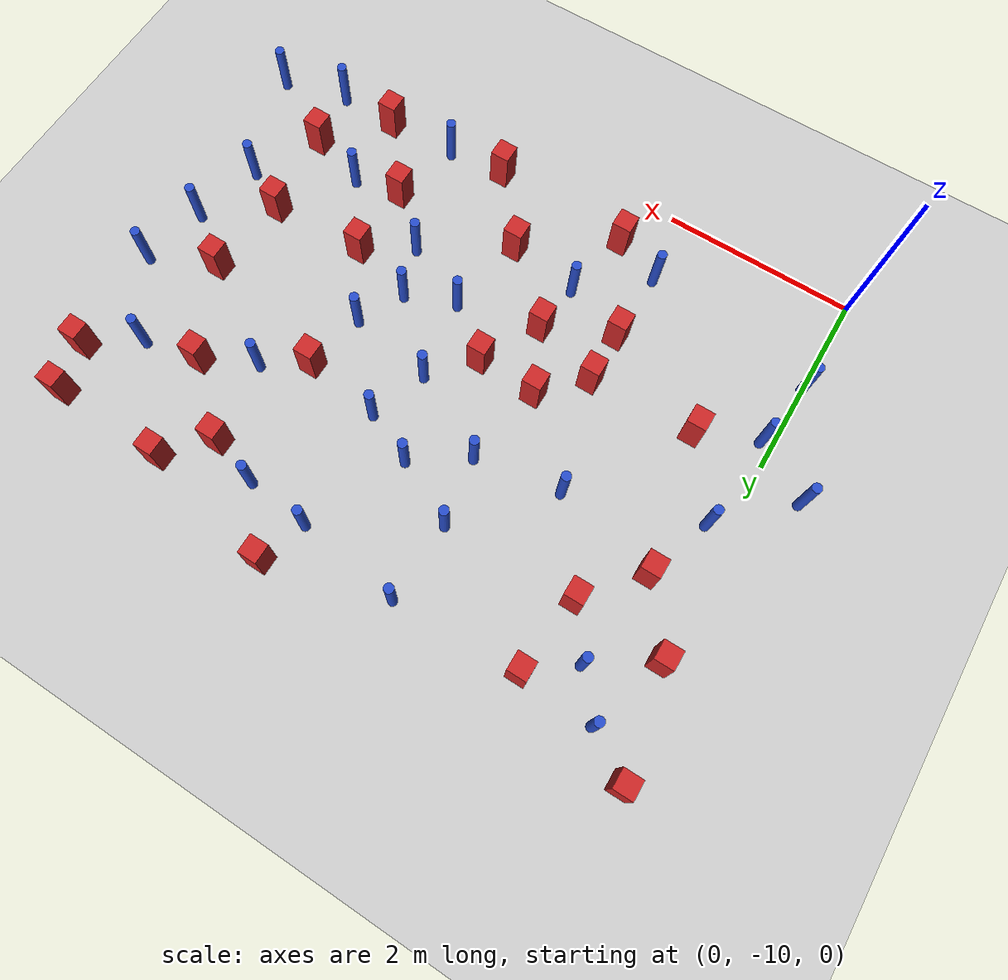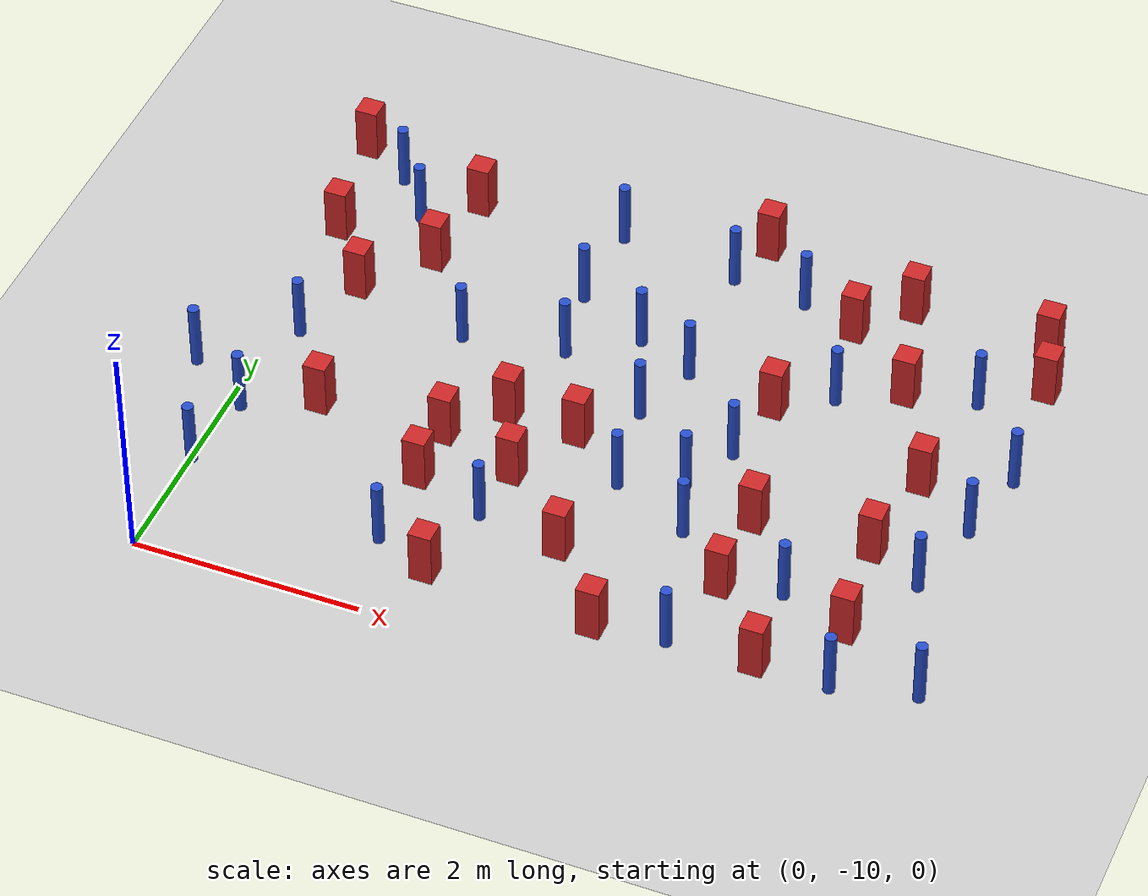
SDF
<sdf version="1.6">
 <world name="default">
  <model name="ground_plane">
   <static>1</static>
   <link name="link">
    <collision name="collision">
     <geometry><plane><normal>0 0 1</normal><size>100 100</size></plane></geometry>
     <surface><friction><ode><mu>100</mu><mu2>50</mu2></ode></friction></surface>
    </collision>
    <visual name="visual">
     <cast_shadows>0</cast_shadows>
     <geometry><plane><normal>0 0 1</normal><size>100 100</size></plane></geometry>
     <material>
      <ambient>1.0 1.0 1.0 1.0</ambient>
      <diffuse>0.8 0.8 0.8 1.0</diffuse>
      <specular>0.01 0.01 0.01 1.000000</specular>
     </material>
    </visual>
   </link>
  </model>
  <model name="square_post_obstacle1">
   <static>true</static>
   <pose>0.990745557515 -5.11221250376 -6.11067671241e-07 -5.50515727128e-06 -8.79689657224e-07 2.37013304536e-05</pose>
   <link name="link">
    <pose>0 0 0.25 0 -0 0</pose>
    <inertial>
     <mass>100</mass>
     <inertia>
      <ixx>0.166667</ixx>
      <ixy>0</ixy>
      <ixz>0</ixz>
      <iyy>0.166667</iyy>
      <iyz>0</iyz>
      <izz>0.166667</izz>
     </inertia>
    </inertial>
    <collision name="collision"><geometry><box><size>.2 .2 .5</size></box></geometry></collision>
    <visual name="visual">
     <geometry><box><size>.2 .2 .5</size></box></geometry>
     <material>
      <script><name>Gazebo/Red</name><uri>file://media/materials/scripts/gazebo.material</uri></script>
     </material>
    </visual>
   </link>
  </model>
  <model name="pole_obstacle0">
   <static>true</static>
   <pose>0.11906316881 -8.21374808849 -9.47619616065e-06 5.49618799738e-07 2.3631041403e-07 -1.55090534819e-07</pose>
   <link name="link">
    <pose>0 0 0.3 0 -0 0</pose>
    <inertial>
     <mass>1</mass>
     <inertia><ixx>0.145833</ixx><ixy>0</ixy><ixz>0</ixz><iyy>0.145833</iyy><iyz>0</iyz><izz>0.125</izz></inertia>
    </inertial>
    <collision name="collision">
     <geometry><cylinder><radius>0.05</radius><length>.6</length></cylinder></geometry>
    </collision>
    <visual name="visual">
     <geometry><cylinder><radius>0.05</radius><length>.6</length></cylinder></geometry>
     <material>
      <script><name>Gazebo/Blue</name><uri>file://media/materials/scripts/gazebo.material</uri></script>
     </material>
    </visual>
   </link>
  </model>
  <model name="pole_obstacle4">
   <static>true</static>
   <pose>5.8278807453 -5.88849563057 -9.47619616065e-06 5.49618799737e-07 2.36310414037e-07 -1.55090534814e-07</pose>
   <link name="link">
    <pose>0 0 0.3 0 -0 0</pose>
    <inertial>
     <mass>1</mass>
     <inertia><ixx>0.145833</ixx><ixy>0</ixy><ixz>0</ixz><iyy>0.145833</iyy><iyz>0</iyz><izz>0.125</izz></inertia>
    </inertial>
    <collision name="collision">
     <geometry><cylinder><radius>0.05</radius><length>.6</length></cylinder></geometry>
    </collision>
    <visual name="visual">
     <geometry><cylinder><radius>0.05</radius><length>.6</length></cylinder></geometry>
     <material>
      <script><name>Gazebo/Blue</name><uri>file://media/materials/scripts/gazebo.material</uri></script>
     </material>
    </visual>
   </link>
  </model>
  <model name="pole_obstacle7">
   <static>true</static>
   <pose>2.48516337789 -8.6628891993 -9.4761961606e-06 5.49618799729e-07 2.36310414e-07 -1.55090534824e-07</pose>
   <link name="link">
    <pose>0 0 0.3 0 -0 0</pose>
    <inertial>
     <mass>1</mass>
     <inertia><ixx>0.145833</ixx><ixy>0</ixy><ixz>0</ixz><iyy>0.145833</iyy><iyz>0</iyz><izz>0.125</izz></inertia>
    </inertial>
    <collision name="collision">
     <geometry><cylinder><radius>0.05</radius><length>.6</length></cylinder></geometry>
    </collision>
    <visual name="visual">
     <geometry><cylinder><radius>0.05</radius><length>.6</length></cylinder></geometry>
     <material>
      <script><name>Gazebo/Blue</name><uri>file://media/materials/scripts/gazebo.material</uri></script>
     </material>
    </visual>
   </link>
  </model>
  <model name="square_post_obstacle9">
   <static>true</static>
   <pose>5.16042200609 -9.40029014355 -6.11067671241e-07 -5.50515727128e-06 -8.79689657224e-07 2.37013304536e-05</pose>
   <link name="link">
    <pose>0 0 0.25 0 -0 0</pose>
    <inertial>
     <mass>100</mass>
     <inertia>
      <ixx>0.166667</ixx>
      <ixy>0</ixy>
      <ixz>0</ixz>
      <iyy>0.166667</iyy>
      <iyz>0</iyz>
      <izz>0.166667</izz>
     </inertia>
    </inertial>
    <collision name="collision"><geometry><box><size>.2 .2 .5</size></box></geometry></collision>
    <visual name="visual">
     <geometry><box><size>.2 .2 .5</size></box></geometry>
     <material>
      <script><name>Gazebo/Red</name><uri>file://media/materials/scripts/gazebo.material</uri></script>
     </material>
    </visual>
   </link>
  </model>
  <model name="square_post_obstacle15">
   <static>true</static>
   <pose>5.71017640182 -6.97548128937 -6.11067671241e-07 -5.50515727128e-06 -8.79689657224e-07 2.37013304536e-05</pose>
   <link name="link">
    <pose>0 0 0.25 0 -0 0</pose>
    <inertial>
     <mass>100</mass>
     <inertia>
      <ixx>0.166667</ixx>
      <ixy>0</ixy>
      <ixz>0</ixz>
      <iyy>0.166667</iyy>
      <iyz>0</iyz>
      <izz>0.166667</izz>
     </inertia>
    </inertial>
    <collision name="collision"><geometry><box><size>.2 .2 .5</size></box></geometry></collision>
    <visual name="visual">
     <geometry><box><size>.2 .2 .5</size></box></geometry>
     <material>
      <script><name>Gazebo/Red</name><uri>file://media/materials/scripts/gazebo.material</uri></script>
     </material>
    </visual>
   </link>
  </model>
  <model name="square_post_obstacle18">
   <static>true</static>
   <pose>2.23808886321 -7.47004831149 -6.11067671241e-07 -5.50515727128e-06 -8.79689657224e-07 2.37013304536e-05</pose>
   <link name="link">
    <pose>0 0 0.25 0 -0 0</pose>
    <inertial>
     <mass>100</mass>
     <inertia>
      <ixx>0.166667</ixx>
      <ixy>0</ixy>
      <ixz>0</ixz>
      <iyy>0.166667</iyy>
      <iyz>0</iyz>
      <izz>0.166667</izz>
     </inertia>
    </inertial>
    <collision name="collision"><geometry><box><size>.2 .2 .5</size></box></geometry></collision>
    <visual name="visual">
     <geometry><box><size>.2 .2 .5</size></box></geometry>
     <material>
      <script><name>Gazebo/Red</name><uri>file://media/materials/scripts/gazebo.material</uri></script>
     </material>
    </visual>
   </link>
  </model>
  <model name="pole_obstacle15">
   <static>true</static>
   <pose>6.4025195496 -6.66513164041 -9.47619616065e-06 5.49618799737e-07 2.36310414037e-07 -1.55090534814e-07</pose>
   <link name="link">
    <pose>0 0 0.3 0 -0 0</pose>
    <inertial>
     <mass>1</mass>
     <inertia><ixx>0.145833</ixx><ixy>0</ixy><ixz>0</ixz><iyy>0.145833</iyy><iyz>0</iyz><izz>0.125</izz></inertia>
    </inertial>
    <collision name="collision">
     <geometry><cylinder><radius>0.05</radius><length>.6</length></cylinder></geometry>
    </collision>
    <visual name="visual">
     <geometry><cylinder><radius>0.05</radius><length>.6</length></cylinder></geometry>
     <material>
      <script><name>Gazebo/Blue</name><uri>file://media/materials/scripts/gazebo.material</uri></script>
     </material>
    </visual>
   </link>
  </model>
  <model name="pole_obstacle22">
   <static>true</static>
   <pose>0.195536032455 -7.19176520849 -9.47619616065e-06 5.49618799738e-07 2.36310414064e-07 -1.55090534799e-07</pose>
   <link name="link">
    <pose>0 0 0.3 0 -0 0</pose>
    <inertial>
     <mass>1</mass>
     <inertia><ixx>0.145833</ixx><ixy>0</ixy><ixz>0</ixz><iyy>0.145833</iyy><iyz>0</iyz><izz>0.125</izz></inertia>
    </inertial>
    <collision name="collision">
     <geometry><cylinder><radius>0.05</radius><length>.6</length></cylinder></geometry>
    </collision>
    <visual name="visual">
     <geometry><cylinder><radius>0.05</radius><length>.6</length></cylinder></geometry>
     <material>
      <script><name>Gazebo/Blue</name><uri>file://media/materials/scripts/gazebo.material</uri></script>
     </material>
    </visual>
   </link>
  </model>
  <model name="pole_obstacle32">
   <static>true</static>
   <pose>6.25303647099 -7.35567265879 -9.47619616065e-06 5.49618799737e-07 2.36310414037e-07 -1.55090534814e-07</pose>
   <link name="link">
    <pose>0 0 0.3 0 -0 0</pose>
    <inertial>
     <mass>1</mass>
     <inertia><ixx>0.145833</ixx><ixy>0</ixy><ixz>0</ixz><iyy>0.145833</iyy><iyz>0</iyz><izz>0.125</izz></inertia>
    </inertial>
    <collision name="collision">
     <geometry><cylinder><radius>0.05</radius><length>.6</length></cylinder></geometry>
    </collision>
    <visual name="visual">
     <geometry><cylinder><radius>0.05</radius><length>.6</length></cylinder></geometry>
     <material>
      <script><name>Gazebo/Blue</name><uri>file://media/materials/scripts/gazebo.material</uri></script>
     </material>
    </visual>
   </link>
  </model>
  <model name="pole_obstacle40">
   <static>true</static>
   <pose>3.45626555922 -6.45096795445 -9.47619616065e-06 5.49618799738e-07 2.3631041406e-07 -1.55090534801e-07</pose>
   <link name="link">
    <pose>0 0 0.3 0 -0 0</pose>
    <inertial>
     <mass>1</mass>
     <inertia><ixx>0.145833</ixx><ixy>0</ixy><ixz>0</ixz><iyy>0.145833</iyy><iyz>0</iyz><izz>0.125</izz></inertia>
    </inertial>
    <collision name="collision">
     <geometry><cylinder><radius>0.05</radius><length>.6</length></cylinder></geometry>
    </collision>
    <visual name="visual">
     <geometry><cylinder><radius>0.05</radius><length>.6</length></cylinder></geometry>
     <material>
      <script><name>Gazebo/Blue</name><uri>file://media/materials/scripts/gazebo.material</uri></script>
     </material>
    </visual>
   </link>
  </model>
  <model name="pole_obstacle43">
   <static>true</static>
   <pose>4.05321860627 -5.26551423352 -9.47619616065e-06 5.49618799737e-07 2.36310414037e-07 -1.55090534814e-07</pose>
   <link name="link">
    <pose>0 0 0.3 0 -0 0</pose>
    <inertial>
     <mass>1</mass>
     <inertia><ixx>0.145833</ixx><ixy>0</ixy><ixz>0</ixz><iyy>0.145833</iyy><iyz>0</iyz><izz>0.125</izz></inertia>
    </inertial>
    <collision name="collision">
     <geometry><cylinder><radius>0.05</radius><length>.6</length></cylinder></geometry>
    </collision>
    <visual name="visual">
     <geometry><cylinder><radius>0.05</radius><length>.6</length></cylinder></geometry>
     <material>
      <script><name>Gazebo/Blue</name><uri>file://media/materials/scripts/gazebo.material</uri></script>
     </material>
    </visual>
   </link>
  </model>
  <model name="square_post_obstacle48">
   <static>true</static>
   <pose>5.23285957941 -6.02287781524 -6.11067671241e-07 -5.50515727128e-06 -8.79689657224e-07 2.37013304536e-05</pose>
   <link name="link">
    <pose>0 0 0.25 0 -0 0</pose>
    <inertial>
     <mass>100</mass>
     <inertia>
      <ixx>0.166667</ixx>
      <ixy>0</ixy>
      <ixz>0</ixz>
      <iyy>0.166667</iyy>
      <iyz>0</iyz>
      <izz>0.166667</izz>
     </inertia>
    </inertial>
    <collision name="collision"><geometry><box><size>.2 .2 .5</size></box></geometry></collision>
    <visual name="visual">
     <geometry><box><size>.2 .2 .5</size></box></geometry>
     <material>
      <script><name>Gazebo/Red</name><uri>file://media/materials/scripts/gazebo.material</uri></script>
     </material>
    </visual>
   </link>
  </model>
  <model name="square_post_obstacle51">
   <static>true</static>
   <pose>-0.226524741326 -4.76326145713 -6.11067671241e-07 -5.50515727128e-06 -8.79689657224e-07 2.37013304536e-05</pose>
   <link name="link">
    <pose>0 0 0.25 0 -0 0</pose>
    <inertial>
     <mass>100</mass>
     <inertia>
      <ixx>0.166667</ixx>
      <ixy>0</ixy>
      <ixz>0</ixz>
      <iyy>0.166667</iyy>
      <iyz>0</iyz>
      <izz>0.166667</izz>
     </inertia>
    </inertial>
    <collision name="collision"><geometry><box><size>.2 .2 .5</size></box></geometry></collision>
    <visual name="visual">
     <geometry><box><size>.2 .2 .5</size></box></geometry>
     <material>
      <script><name>Gazebo/Red</name><uri>file://media/materials/scripts/gazebo.material</uri></script>
     </material>
    </visual>
   </link>
  </model>
  <model name="pole_obstacle54">
   <static>true</static>
   <pose>1.5026299981 -6.74068023559 -9.47619616065e-06 5.49618799737e-07 2.36310414061e-07 -1.550905348e-07</pose>
   <link name="link">
    <pose>0 0 0.3 0 -0 0</pose>
    <inertial>
     <mass>1</mass>
     <inertia><ixx>0.145833</ixx><ixy>0</ixy><ixz>0</ixz><iyy>0.145833</iyy><iyz>0</iyz><izz>0.125</izz></inertia>
    </inertial>
    <collision name="collision">
     <geometry><cylinder><radius>0.05</radius><length>.6</length></cylinder></geometry>
    </collision>
    <visual name="visual">
     <geometry><cylinder><radius>0.05</radius><length>.6</length></cylinder></geometry>
     <material>
      <script><name>Gazebo/Blue</name><uri>file://media/materials/scripts/gazebo.material</uri></script>
     </material>
    </visual>
   </link>
  </model>
  <model name="square_post_obstacle77">
   <static>true</static>
   <pose>-0.0295060486647 -5.85834919185 -6.11067671241e-07 -5.50515727128e-06 -8.79689657224e-07 2.37013304536e-05</pose>
   <link name="link">
    <pose>0 0 0.25 0 -0 0</pose>
    <inertial>
     <mass>100</mass>
     <inertia>
      <ixx>0.166667</ixx>
      <ixy>0</ixy>
      <ixz>0</ixz>
      <iyy>0.166667</iyy>
      <iyz>0</iyz>
      <izz>0.166667</izz>
     </inertia>
    </inertial>
    <collision name="collision"><geometry><box><size>.2 .2 .5</size></box></geometry></collision>
    <visual name="visual">
     <geometry><box><size>.2 .2 .5</size></box></geometry>
     <material>
      <script><name>Gazebo/Red</name><uri>file://media/materials/scripts/gazebo.material</uri></script>
     </material>
    </visual>
   </link>
  </model>
  <model name="pole_obstacle82">
   <static>true</static>
   <pose>2.2690997647 -5.88511651672 -9.47619616065e-06 5.49618799738e-07 2.3631041406e-07 -1.55090534801e-07</pose>
   <link name="link">
    <pose>0 0 0.3 0 -0 0</pose>
    <inertial>
     <mass>1</mass>
     <inertia><ixx>0.145833</ixx><ixy>0</ixy><ixz>0</ixz><iyy>0.145833</iyy><iyz>0</iyz><izz>0.125</izz></inertia>
    </inertial>
    <collision name="collision">
     <geometry><cylinder><radius>0.05</radius><length>.6</length></cylinder></geometry>
    </collision>
    <visual name="visual">
     <geometry><cylinder><radius>0.05</radius><length>.6</length></cylinder></geometry>
     <material>
      <script><name>Gazebo/Blue</name><uri>file://media/materials/scripts/gazebo.material</uri></script>
     </material>
    </visual>
   </link>
  </model>
  <model name="pole_obstacle84">
   <static>true</static>
   <pose>3.3824913435 -5.19321054169 -9.47619616065e-06 5.49618799738e-07 2.3631041406e-07 -1.55090534801e-07</pose>
   <link name="link">
    <pose>0 0 0.3 0 -0 0</pose>
    <inertial>
     <mass>1</mass>
     <inertia><ixx>0.145833</ixx><ixy>0</ixy><ixz>0</ixz><iyy>0.145833</iyy><iyz>0</iyz><izz>0.125</izz></inertia>
    </inertial>
    <collision name="collision">
     <geometry><cylinder><radius>0.05</radius><length>.6</length></cylinder></geometry>
    </collision>
    <visual name="visual">
     <geometry><cylinder><radius>0.05</radius><length>.6</length></cylinder></geometry>
     <material>
      <script><name>Gazebo/Blue</name><uri>file://media/materials/scripts/gazebo.material</uri></script>
     </material>
    </visual>
   </link>
  </model>
  <model name="square_post_obstacle83">
   <static>true</static>
   <pose>4.2618669995 -6.57962523405 -6.11067671241e-07 -5.50515727128e-06 -8.79689657224e-07 2.37013304536e-05</pose>
   <link name="link">
    <pose>0 0 0.25 0 -0 0</pose>
    <inertial>
     <mass>100</mass>
     <inertia>
      <ixx>0.166667</ixx>
      <ixy>0</ixy>
      <ixz>0</ixz>
      <iyy>0.166667</iyy>
      <iyz>0</iyz>
      <izz>0.166667</izz>
     </inertia>
    </inertial>
    <collision name="collision"><geometry><box><size>.2 .2 .5</size></box></geometry></collision>
    <visual name="visual">
     <geometry><box><size>.2 .2 .5</size></box></geometry>
     <material>
      <script><name>Gazebo/Red</name><uri>file://media/materials/scripts/gazebo.material</uri></script>
     </material>
    </visual>
   </link>
  </model>
  <model name="square_post_obstacle87">
   <static>true</static>
   <pose>3.53726460842 -4.71168558514 -6.11067671241e-07 -5.50515727128e-06 -8.79689657224e-07 2.37013304536e-05</pose>
   <link name="link">
    <pose>0 0 0.25 0 -0 0</pose>
    <inertial>
     <mass>100</mass>
     <inertia>
      <ixx>0.166667</ixx>
      <ixy>0</ixy>
      <ixz>0</ixz>
      <iyy>0.166667</iyy>
      <iyz>0</iyz>
      <izz>0.166667</izz>
     </inertia>
    </inertial>
    <collision name="collision"><geometry><box><size>.2 .2 .5</size></box></geometry></collision>
    <visual name="visual">
     <geometry><box><size>.2 .2 .5</size></box></geometry>
     <material>
      <script><name>Gazebo/Red</name><uri>file://media/materials/scripts/gazebo.material</uri></script>
     </material>
    </visual>
   </link>
  </model>
  <model name="pole_obstacle97">
   <static>true</static>
   <pose>3.91187994559 -7.7016430965 -9.47619616065e-06 5.49618799738e-07 2.3631041406e-07 -1.55090534801e-07</pose>
   <link name="link">
    <pose>0 0 0.3 0 -0 0</pose>
    <inertial>
     <mass>1</mass>
     <inertia><ixx>0.145833</ixx><ixy>0</ixy><ixz>0</ixz><iyy>0.145833</iyy><iyz>0</iyz><izz>0.125</izz></inertia>
    </inertial>
    <collision name="collision">
     <geometry><cylinder><radius>0.05</radius><length>.6</length></cylinder></geometry>
    </collision>
    <visual name="visual">
     <geometry><cylinder><radius>0.05</radius><length>.6</length></cylinder></geometry>
     <material>
      <script><name>Gazebo/Blue</name><uri>file://media/materials/scripts/gazebo.material</uri></script>
     </material>
    </visual>
   </link>
  </model>
  <model name="square_post_obstacle88">
   <static>true</static>
   <pose>1.8486278164 -8.4469480732 -6.11067671241e-07 -5.50515727128e-06 -8.79689657224e-07 2.37013304536e-05</pose>
   <link name="link">
    <pose>0 0 0.25 0 -0 0</pose>
    <inertial>
     <mass>100</mass>
     <inertia>
      <ixx>0.166667</ixx>
      <ixy>0</ixy>
      <ixz>0</ixz>
      <iyy>0.166667</iyy>
      <iyz>0</iyz>
      <izz>0.166667</izz>
     </inertia>
    </inertial>
    <collision name="collision"><geometry><box><size>.2 .2 .5</size></box></geometry></collision>
    <visual name="visual">
     <geometry><box><size>.2 .2 .5</size></box></geometry>
     <material>
      <script><name>Gazebo/Red</name><uri>file://media/materials/scripts/gazebo.material</uri></script>
     </material>
    </visual>
   </link>
  </model>
  <model name="pole_obstacle102">
   <static>true</static>
   <pose>4.42021800701 -9.42635367814 -9.47619616065e-06 5.49618799737e-07 2.36310414065e-07 -1.55090534796e-07</pose>
   <link name="link">
    <pose>0 0 0.3 0 -0 0</pose>
    <inertial>
     <mass>1</mass>
     <inertia><ixx>0.145833</ixx><ixy>0</ixy><ixz>0</ixz><iyy>0.145833</iyy><iyz>0</iyz><izz>0.125</izz></inertia>
    </inertial>
    <collision name="collision">
     <geometry><cylinder><radius>0.05</radius><length>.6</length></cylinder></geometry>
    </collision>
    <visual name="visual">
     <geometry><cylinder><radius>0.05</radius><length>.6</length></cylinder></geometry>
     <material>
      <script><name>Gazebo/Blue</name><uri>file://media/materials/scripts/gazebo.material</uri></script>
     </material>
    </visual>
   </link>
  </model>
  <model name="square_post_obstacle94">
   <static>true</static>
   <pose>5.70252122487 -8.79450902894 -6.11067671241e-07 -5.50515727128e-06 -8.79689657224e-07 2.37013304536e-05</pose>
   <link name="link">
    <pose>0 0 0.25 0 -0 0</pose>
    <inertial>
     <mass>100</mass>
     <inertia>
      <ixx>0.166667</ixx>
      <ixy>0</ixy>
      <ixz>0</ixz>
      <iyy>0.166667</iyy>
      <iyz>0</iyz>
      <izz>0.166667</izz>
     </inertia>
    </inertial>
    <collision name="collision"><geometry><box><size>.2 .2 .5</size></box></geometry></collision>
    <visual name="visual">
     <geometry><box><size>.2 .2 .5</size></box></geometry>
     <material>
      <script><name>Gazebo/Red</name><uri>file://media/materials/scripts/gazebo.material</uri></script>
     </material>
    </visual>
   </link>
  </model>
  <model name="square_post_obstacle95">
   <static>true</static>
   <pose>4.95866702561 -5.00988702206 -6.11067671241e-07 -5.50515727128e-06 -8.79689657224e-07 2.37013304536e-05</pose>
   <link name="link">
    <pose>0 0 0.25 0 -0 0</pose>
    <inertial>
     <mass>100</mass>
     <inertia>
      <ixx>0.166667</ixx>
      <ixy>0</ixy>
      <ixz>0</ixz>
      <iyy>0.166667</iyy>
      <iyz>0</iyz>
      <izz>0.166667</izz>
     </inertia>
    </inertial>
    <collision name="collision"><geometry><box><size>.2 .2 .5</size></box></geometry></collision>
    <visual name="visual">
     <geometry><box><size>.2 .2 .5</size></box></geometry>
     <material>
      <script><name>Gazebo/Red</name><uri>file://media/materials/scripts/gazebo.material</uri></script>
     </material>
    </visual>
   </link>
  </model>
  <model name="pole_obstacle115">
   <static>true</static>
   <pose>6.07173475081 -8.09204075943 -9.47619616065e-06 5.49618799737e-07 2.36310414065e-07 -1.55090534796e-07</pose>
   <link name="link">
    <pose>0 0 0.3 0 -0 0</pose>
    <inertial>
     <mass>1</mass>
     <inertia><ixx>0.145833</ixx><ixy>0</ixy><ixz>0</ixz><iyy>0.145833</iyy><iyz>0</iyz><izz>0.125</izz></inertia>
    </inertial>
    <collision name="collision">
     <geometry><cylinder><radius>0.05</radius><length>.6</length></cylinder></geometry>
    </collision>
    <visual name="visual">
     <geometry><cylinder><radius>0.05</radius><length>.6</length></cylinder></geometry>
     <material>
      <script><name>Gazebo/Blue</name><uri>file://media/materials/scripts/gazebo.material</uri></script>
     </material>
    </visual>
   </link>
  </model>
  <model name="square_post_obstacle110">
   <static>true</static>
   <pose>2.87223565103 -7.50167372046 -6.11067671241e-07 -5.50515727128e-06 -8.79689657224e-07 2.37013304536e-05</pose>
   <link name="link">
    <pose>0 0 0.25 0 -0 0</pose>
    <inertial>
     <mass>100</mass>
     <inertia>
      <ixx>0.166667</ixx>
      <ixy>0</ixy>
      <ixz>0</ixz>
      <iyy>0.166667</iyy>
      <iyz>0</iyz>
      <izz>0.166667</izz>
     </inertia>
    </inertial>
    <collision name="collision"><geometry><box><size>.2 .2 .5</size></box></geometry></collision>
    <visual name="visual">
     <geometry><box><size>.2 .2 .5</size></box></geometry>
     <material>
      <script><name>Gazebo/Red</name><uri>file://media/materials/scripts/gazebo.material</uri></script>
     </material>
    </visual>
   </link>
  </model>
  <model name="pole_obstacle121">
   <static>true</static>
   <pose>2.30269021293 -5.04449209234 -9.47619616065e-06 5.49618799738e-07 2.3631041406e-07 -1.55090534801e-07</pose>
   <link name="link">
    <pose>0 0 0.3 0 -0 0</pose>
    <inertial>
     <mass>1</mass>
     <inertia><ixx>0.145833</ixx><ixy>0</ixy><ixz>0</ixz><iyy>0.145833</iyy><iyz>0</iyz><izz>0.125</izz></inertia>
    </inertial>
    <collision name="collision">
     <geometry><cylinder><radius>0.05</radius><length>.6</length></cylinder></geometry>
    </collision>
    <visual name="visual">
     <geometry><cylinder><radius>0.05</radius><length>.6</length></cylinder></geometry>
     <material>
      <script><name>Gazebo/Blue</name><uri>file://media/materials/scripts/gazebo.material</uri></script>
     </material>
    </visual>
   </link>
  </model>
  <model name="pole_obstacle122">
   <static>true</static>
   <pose>3.25203608269 -7.05485281898 -9.47619616065e-06 5.49618799738e-07 2.3631041406e-07 -1.55090534801e-07</pose>
   <link name="link">
    <pose>0 0 0.3 0 -0 0</pose>
    <inertial>
     <mass>1</mass>
     <inertia><ixx>0.145833</ixx><ixy>0</ixy><ixz>0</ixz><iyy>0.145833</iyy><iyz>0</iyz><izz>0.125</izz></inertia>
    </inertial>
    <collision name="collision">
     <geometry><cylinder><radius>0.05</radius><length>.6</length></cylinder></geometry>
    </collision>
    <visual name="visual">
     <geometry><cylinder><radius>0.05</radius><length>.6</length></cylinder></geometry>
     <material>
      <script><name>Gazebo/Blue</name><uri>file://media/materials/scripts/gazebo.material</uri></script>
     </material>
    </visual>
   </link>
  </model>
  <model name="pole_obstacle137">
   <static>true</static>
   <pose>4.14444664745 -7.2181362221 -9.47619616065e-06 5.49618799737e-07 2.36310414037e-07 -1.55090534814e-07</pose>
   <link name="link">
    <pose>0 0 0.3 0 -0 0</pose>
    <inertial>
     <mass>1</mass>
     <inertia><ixx>0.145833</ixx><ixy>0</ixy><ixz>0</ixz><iyy>0.145833</iyy><iyz>0</iyz><izz>0.125</izz></inertia>
    </inertial>
    <collision name="collision">
     <geometry><cylinder><radius>0.05</radius><length>.6</length></cylinder></geometry>
    </collision>
    <visual name="visual">
     <geometry><cylinder><radius>0.05</radius><length>.6</length></cylinder></geometry>
     <material>
      <script><name>Gazebo/Blue</name><uri>file://media/materials/scripts/gazebo.material</uri></script>
     </material>
    </visual>
   </link>
  </model>
  <model name="square_post_obstacle120">
   <static>true</static>
   <pose>4.59781854516 -8.6929814129 -6.11067671241e-07 -5.50515727128e-06 -8.79689657224e-07 2.37013304536e-05</pose>
   <link name="link">
    <pose>0 0 0.25 0 -0 0</pose>
    <inertial>
     <mass>100</mass>
     <inertia>
      <ixx>0.166667</ixx>
      <ixy>0</ixy>
      <ixz>0</ixz>
      <iyy>0.166667</iyy>
      <iyz>0</iyz>
      <izz>0.166667</izz>
     </inertia>
    </inertial>
    <collision name="collision"><geometry><box><size>.2 .2 .5</size></box></geometry></collision>
    <visual name="visual">
     <geometry><box><size>.2 .2 .5</size></box></geometry>
     <material>
      <script><name>Gazebo/Red</name><uri>file://media/materials/scripts/gazebo.material</uri></script>
     </material>
    </visual>
   </link>
  </model>
  <model name="square_post_obstacle123">
   <static>true</static>
   <pose>4.56554223984 -5.43580724595 -6.11067671241e-07 -5.50515727128e-06 -8.79689657224e-07 2.37013304536e-05</pose>
   <link name="link">
    <pose>0 0 0.25 0 -0 0</pose>
    <inertial>
     <mass>100</mass>
     <inertia>
      <ixx>0.166667</ixx>
      <ixy>0</ixy>
      <ixz>0</ixz>
      <iyy>0.166667</iyy>
      <iyz>0</iyz>
      <izz>0.166667</izz>
     </inertia>
    </inertial>
    <collision name="collision"><geometry><box><size>.2 .2 .5</size></box></geometry></collision>
    <visual name="visual">
     <geometry><box><size>.2 .2 .5</size></box></geometry>
     <material>
      <script><name>Gazebo/Red</name><uri>file://media/materials/scripts/gazebo.material</uri></script>
     </material>
    </visual>
   </link>
  </model>
  <model name="square_post_obstacle128">
   <static>true</static>
   <pose>2.33505238018 -9.42761902415 -6.11067671241e-07 -5.50515727128e-06 -8.79689657224e-07 2.37013304536e-05</pose>
   <link name="link">
    <pose>0 0 0.25 0 -0 0</pose>
    <inertial>
     <mass>100</mass>
     <inertia>
      <ixx>0.166667</ixx>
      <ixy>0</ixy>
      <ixz>0</ixz>
      <iyy>0.166667</iyy>
      <iyz>0</iyz>
      <izz>0.166667</izz>
     </inertia>
    </inertial>
    <collision name="collision"><geometry><box><size>.2 .2 .5</size></box></geometry></collision>
    <visual name="visual">
     <geometry><box><size>.2 .2 .5</size></box></geometry>
     <material>
      <script><name>Gazebo/Red</name><uri>file://media/materials/scripts/gazebo.material</uri></script>
     </material>
    </visual>
   </link>
  </model>
  <model name="square_post_obstacle131">
   <static>true</static>
   <pose>4.5854856726 -7.90444692328 -6.11067671241e-07 -5.50515727128e-06 -8.79689657224e-07 2.37013304536e-05</pose>
   <link name="link">
    <pose>0 0 0.25 0 -0 0</pose>
    <inertial>
     <mass>100</mass>
     <inertia>
      <ixx>0.166667</ixx>
      <ixy>0</ixy>
      <ixz>0</ixz>
      <iyy>0.166667</iyy>
      <iyz>0</iyz>
      <izz>0.166667</izz>
     </inertia>
    </inertial>
    <collision name="collision"><geometry><box><size>.2 .2 .5</size></box></geometry></collision>
    <visual name="visual">
     <geometry><box><size>.2 .2 .5</size></box></geometry>
     <material>
      <script><name>Gazebo/Red</name><uri>file://media/materials/scripts/gazebo.material</uri></script>
     </material>
    </visual>
   </link>
  </model>
  <model name="pole_obstacle148">
   <static>true</static>
   <pose>1.83119544911 -9.21611574282 -9.47619616065e-06 5.49618799737e-07 2.36310414046e-07 -1.55090534809e-07</pose>
   <link name="link">
    <pose>0 0 0.3 0 -0 0</pose>
    <inertial>
     <mass>1</mass>
     <inertia><ixx>0.145833</ixx><ixy>0</ixy><ixz>0</ixz><iyy>0.145833</iyy><iyz>0</iyz><izz>0.125</izz></inertia>
    </inertial>
    <collision name="collision">
     <geometry><cylinder><radius>0.05</radius><length>.6</length></cylinder></geometry>
    </collision>
    <visual name="visual">
     <geometry><cylinder><radius>0.05</radius><length>.6</length></cylinder></geometry>
     <material>
      <script><name>Gazebo/Blue</name><uri>file://media/materials/scripts/gazebo.material</uri></script>
     </material>
    </visual>
   </link>
  </model>
  <model name="square_post_obstacle140">
   <static>true</static>
   <pose>0.725982753769 -7.93812512078 -6.11067671241e-07 -5.50515727128e-06 -8.79689657224e-07 2.37013304536e-05</pose>
   <link name="link">
    <pose>0 0 0.25 0 -0 0</pose>
    <inertial>
     <mass>100</mass>
     <inertia>
      <ixx>0.166667</ixx>
      <ixy>0</ixy>
      <ixz>0</ixz>
      <iyy>0.166667</iyy>
      <iyz>0</iyz>
      <izz>0.166667</izz>
     </inertia>
    </inertial>
    <collision name="collision"><geometry><box><size>.2 .2 .5</size></box></geometry></collision>
    <visual name="visual">
     <geometry><box><size>.2 .2 .5</size></box></geometry>
     <material>
      <script><name>Gazebo/Red</name><uri>file://media/materials/scripts/gazebo.material</uri></script>
     </material>
    </visual>
   </link>
  </model>
  <model name="pole_obstacle149">
   <static>true</static>
   <pose>0.555630916487 -5.45600510376 -9.47619616065e-06 5.49618799737e-07 2.36310414065e-07 -1.55090534796e-07</pose>
   <link name="link">
    <pose>0 0 0.3 0 -0 0</pose>
    <inertial>
     <mass>1</mass>
     <inertia><ixx>0.145833</ixx><ixy>0</ixy><ixz>0</ixz><iyy>0.145833</iyy><iyz>0</iyz><izz>0.125</izz></inertia>
    </inertial>
    <collision name="collision">
     <geometry><cylinder><radius>0.05</radius><length>.6</length></cylinder></geometry>
    </collision>
    <visual name="visual">
     <geometry><cylinder><radius>0.05</radius><length>.6</length></cylinder></geometry>
     <material>
      <script><name>Gazebo/Blue</name><uri>file://media/materials/scripts/gazebo.material</uri></script>
     </material>
    </visual>
   </link>
  </model>
  <model name="pole_obstacle150">
   <static>true</static>
   <pose>0.0104127863351 -8.93412859887 -9.47619616065e-06 5.49618799737e-07 2.36310414036e-07 -1.55090534815e-07</pose>
   <link name="link">
    <pose>0 0 0.3 0 -0 0</pose>
    <inertial>
     <mass>1</mass>
     <inertia><ixx>0.145833</ixx><ixy>0</ixy><ixz>0</ixz><iyy>0.145833</iyy><iyz>0</iyz><izz>0.125</izz></inertia>
    </inertial>
    <collision name="collision">
     <geometry><cylinder><radius>0.05</radius><length>.6</length></cylinder></geometry>
    </collision>
    <visual name="visual">
     <geometry><cylinder><radius>0.05</radius><length>.6</length></cylinder></geometry>
     <material>
      <script><name>Gazebo/Blue</name><uri>file://media/materials/scripts/gazebo.material</uri></script>
     </material>
    </visual>
   </link>
  </model>
  <model name="pole_obstacle151">
   <static>true</static>
   <pose>3.38958055804 -7.90406429127 -9.47619616065e-06 5.49618799738e-07 2.3631041406e-07 -1.55090534801e-07</pose>
   <link name="link">
    <pose>0 0 0.3 0 -0 0</pose>
    <inertial>
     <mass>1</mass>
     <inertia><ixx>0.145833</ixx><ixy>0</ixy><ixz>0</ixz><iyy>0.145833</iyy><iyz>0</iyz><izz>0.125</izz></inertia>
    </inertial>
    <collision name="collision">
     <geometry><cylinder><radius>0.05</radius><length>.6</length></cylinder></geometry>
    </collision>
    <visual name="visual">
     <geometry><cylinder><radius>0.05</radius><length>.6</length></cylinder></geometry>
     <material>
      <script><name>Gazebo/Blue</name><uri>file://media/materials/scripts/gazebo.material</uri></script>
     </material>
    </visual>
   </link>
  </model>
  <model name="square_post_obstacle142">
   <static>true</static>
   <pose>0.439153952977 -6.49532499697 -6.11067671241e-07 -5.50515727128e-06 -8.79689657224e-07 2.37013304536e-05</pose>
   <link name="link">
    <pose>0 0 0.25 0 -0 0</pose>
    <inertial>
     <mass>100</mass>
     <inertia>
      <ixx>0.166667</ixx>
      <ixy>0</ixy>
      <ixz>0</ixz>
      <iyy>0.166667</iyy>
      <iyz>0</iyz>
      <izz>0.166667</izz>
     </inertia>
    </inertial>
    <collision name="collision"><geometry><box><size>.2 .2 .5</size></box></geometry></collision>
    <visual name="visual">
     <geometry><box><size>.2 .2 .5</size></box></geometry>
     <material>
      <script><name>Gazebo/Red</name><uri>file://media/materials/scripts/gazebo.material</uri></script>
     </material>
    </visual>
   </link>
  </model>
  <model name="square_post_obstacle146">
   <static>true</static>
   <pose>3.23049753577 -8.7818373194 -6.11067671241e-07 -5.50515727128e-06 -8.79689657224e-07 2.37013304536e-05</pose>
   <link name="link">
    <pose>0 0 0.25 0 -0 0</pose>
    <inertial>
     <mass>100</mass>
     <inertia>
      <ixx>0.166667</ixx>
      <ixy>0</ixy>
      <ixz>0</ixz>
      <iyy>0.166667</iyy>
      <iyz>0</iyz>
      <izz>0.166667</izz>
     </inertia>
    </inertial>
    <collision name="collision"><geometry><box><size>.2 .2 .5</size></box></geometry></collision>
    <visual name="visual">
     <geometry><box><size>.2 .2 .5</size></box></geometry>
     <material>
      <script><name>Gazebo/Red</name><uri>file://media/materials/scripts/gazebo.material</uri></script>
     </material>
    </visual>
   </link>
  </model>
  <model name="pole_obstacle157">
   <static>true</static>
   <pose>4.09553622197 -8.22539561161 -9.47619616065e-06 5.49618799737e-07 2.36310414065e-07 -1.55090534796e-07</pose>
   <link name="link">
    <pose>0 0 0.3 0 -0 0</pose>
    <inertial>
     <mass>1</mass>
     <inertia><ixx>0.145833</ixx><ixy>0</ixy><ixz>0</ixz><iyy>0.145833</iyy><iyz>0</iyz><izz>0.125</izz></inertia>
    </inertial>
    <collision name="collision">
     <geometry><cylinder><radius>0.05</radius><length>.6</length></cylinder></geometry>
    </collision>
    <visual name="visual">
     <geometry><cylinder><radius>0.05</radius><length>.6</length></cylinder></geometry>
     <material>
      <script><name>Gazebo/Blue</name><uri>file://media/materials/scripts/gazebo.material</uri></script>
     </material>
    </visual>
   </link>
  </model>
  <model name="pole_obstacle159">
   <static>true</static>
   <pose>4.70533378218 -6.28805375748 -9.47619616065e-06 5.49618799737e-07 2.36310414037e-07 -1.55090534814e-07</pose>
   <link name="link">
    <pose>0 0 0.3 0 -0 0</pose>
    <inertial>
     <mass>1</mass>
     <inertia><ixx>0.145833</ixx><ixy>0</ixy><ixz>0</ixz><iyy>0.145833</iyy><iyz>0</iyz><izz>0.125</izz></inertia>
    </inertial>
    <collision name="collision">
     <geometry><cylinder><radius>0.05</radius><length>.6</length></cylinder></geometry>
    </collision>
    <visual name="visual">
     <geometry><cylinder><radius>0.05</radius><length>.6</length></cylinder></geometry>
     <material>
      <script><name>Gazebo/Blue</name><uri>file://media/materials/scripts/gazebo.material</uri></script>
     </material>
    </visual>
   </link>
  </model>
  <model name="square_post_obstacle155">
   <static>true</static>
   <pose>6.31469567299 -5.54233099596 -6.11067671241e-07 -5.50515727128e-06 -8.79689657224e-07 2.37013304536e-05</pose>
   <link name="link">
    <pose>0 0 0.25 0 -0 0</pose>
    <inertial>
     <mass>100</mass>
     <inertia>
      <ixx>0.166667</ixx>
      <ixy>0</ixy>
      <ixz>0</ixz>
      <iyy>0.166667</iyy>
      <iyz>0</iyz>
      <izz>0.166667</izz>
     </inertia>
    </inertial>
    <collision name="collision"><geometry><box><size>.2 .2 .5</size></box></geometry></collision>
    <visual name="visual">
     <geometry><box><size>.2 .2 .5</size></box></geometry>
     <material>
      <script><name>Gazebo/Red</name><uri>file://media/materials/scripts/gazebo.material</uri></script>
     </material>
    </visual>
   </link>
  </model>
  <model name="pole_obstacle171">
   <static>true</static>
   <pose>2.38626031242 -6.59296722177 -9.47619616065e-06 5.49618799738e-07 2.3631041406e-07 -1.55090534801e-07</pose>
   <link name="link">
    <pose>0 0 0.3 0 -0 0</pose>
    <inertial>
     <mass>1</mass>
     <inertia><ixx>0.145833</ixx><ixy>0</ixy><ixz>0</ixz><iyy>0.145833</iyy><iyz>0</iyz><izz>0.125</izz></inertia>
    </inertial>
    <collision name="collision">
     <geometry><cylinder><radius>0.05</radius><length>.6</length></cylinder></geometry>
    </collision>
    <visual name="visual">
     <geometry><cylinder><radius>0.05</radius><length>.6</length></cylinder></geometry>
     <material>
      <script><name>Gazebo/Blue</name><uri>file://media/materials/scripts/gazebo.material</uri></script>
     </material>
    </visual>
   </link>
  </model>
  <model name="pole_obstacle176">
   <static>true</static>
   <pose>5.79416698098 -9.41440557211 -9.47619616065e-06 5.49618799737e-07 2.36310414065e-07 -1.55090534796e-07</pose>
   <link name="link">
    <pose>0 0 0.3 0 -0 0</pose>
    <inertial>
     <mass>1</mass>
     <inertia><ixx>0.145833</ixx><ixy>0</ixy><ixz>0</ixz><iyy>0.145833</iyy><iyz>0</iyz><izz>0.125</izz></inertia>
    </inertial>
    <collision name="collision">
     <geometry><cylinder><radius>0.05</radius><length>.6</length></cylinder></geometry>
    </collision>
    <visual name="visual">
     <geometry><cylinder><radius>0.05</radius><length>.6</length></cylinder></geometry>
     <material>
      <script><name>Gazebo/Blue</name><uri>file://media/materials/scripts/gazebo.material</uri></script>
     </material>
    </visual>
   </link>
  </model>
  <model name="pole_obstacle178">
   <static>true</static>
   <pose>6.48480801184 -9.24136238838 -9.47619616065e-06 5.49618799737e-07 2.36310414065e-07 -1.55090534796e-07</pose>
   <link name="link">
    <pose>0 0 0.3 0 -0 0</pose>
    <inertial>
     <mass>1</mass>
     <inertia><ixx>0.145833</ixx><ixy>0</ixy><ixz>0</ixz><iyy>0.145833</iyy><iyz>0</iyz><izz>0.125</izz></inertia>
    </inertial>
    <collision name="collision">
     <geometry><cylinder><radius>0.05</radius><length>.6</length></cylinder></geometry>
    </collision>
    <visual name="visual">
     <geometry><cylinder><radius>0.05</radius><length>.6</length></cylinder></geometry>
     <material>
      <script><name>Gazebo/Blue</name><uri>file://media/materials/scripts/gazebo.material</uri></script>
     </material>
    </visual>
   </link>
  </model>
  <model name="pole_obstacle181">
   <static>true</static>
   <pose>2.92980646061 -6.21720251149 -9.47619616065e-06 5.49618799738e-07 2.3631041406e-07 -1.55090534801e-07</pose>
   <link name="link">
    <pose>0 0 0.3 0 -0 0</pose>
    <inertial>
     <mass>1</mass>
     <inertia><ixx>0.145833</ixx><ixy>0</ixy><ixz>0</ixz><iyy>0.145833</iyy><iyz>0</iyz><izz>0.125</izz></inertia>
    </inertial>
    <collision name="collision">
     <geometry><cylinder><radius>0.05</radius><length>.6</length></cylinder></geometry>
    </collision>
    <visual name="visual">
     <geometry><cylinder><radius>0.05</radius><length>.6</length></cylinder></geometry>
     <material>
      <script><name>Gazebo/Blue</name><uri>file://media/materials/scripts/gazebo.material</uri></script>
     </material>
    </visual>
   </link>
  </model>
  <model name="square_post_obstacle174">
   <static>true</static>
   <pose>5.59743534386 -7.85800029079 -6.11067671241e-07 -5.50515727128e-06 -8.79689657224e-07 2.37013304536e-05</pose>
   <link name="link">
    <pose>0 0 0.25 0 -0 0</pose>
    <inertial>
     <mass>100</mass>
     <inertia>
      <ixx>0.166667</ixx>
      <ixy>0</ixy>
      <ixz>0</ixz>
      <iyy>0.166667</iyy>
      <iyz>0</iyz>
      <izz>0.166667</izz>
     </inertia>
    </inertial>
    <collision name="collision"><geometry><box><size>.2 .2 .5</size></box></geometry></collision>
    <visual name="visual">
     <geometry><box><size>.2 .2 .5</size></box></geometry>
     <material>
      <script><name>Gazebo/Red</name><uri>file://media/materials/scripts/gazebo.material</uri></script>
     </material>
    </visual>
   </link>
  </model>
  <model name="square_post_obstacle177">
   <static>true</static>
   <pose>3.8128430047 -9.49681700598 -6.11067671241e-07 -5.50515727128e-06 -8.79689657224e-07 2.37013304536e-05</pose>
   <link name="link">
    <pose>0 0 0.25 0 -0 0</pose>
    <inertial>
     <mass>100</mass>
     <inertia>
      <ixx>0.166667</ixx>
      <ixy>0</ixy>
      <ixz>0</ixz>
      <iyy>0.166667</iyy>
      <iyz>0</iyz>
      <izz>0.166667</izz>
     </inertia>
    </inertial>
    <collision name="collision"><geometry><box><size>.2 .2 .5</size></box></geometry></collision>
    <visual name="visual">
     <geometry><box><size>.2 .2 .5</size></box></geometry>
     <material>
      <script><name>Gazebo/Red</name><uri>file://media/materials/scripts/gazebo.material</uri></script>
     </material>
    </visual>
   </link>
  </model>
  <model name="square_post_obstacle187">
   <static>true</static>
   <pose>0.898513113138 -5.9282743476 -6.11067671241e-07 -5.50515727128e-06 -8.79689657224e-07 2.37013304536e-05</pose>
   <link name="link">
    <pose>0 0 0.25 0 -0 0</pose>
    <inertial>
     <mass>100</mass>
     <inertia>
      <ixx>0.166667</ixx>
      <ixy>0</ixy>
      <ixz>0</ixz>
      <iyy>0.166667</iyy>
      <iyz>0</iyz>
      <izz>0.166667</izz>
     </inertia>
    </inertial>
    <collision name="collision"><geometry><box><size>.2 .2 .5</size></box></geometry></collision>
    <visual name="visual">
     <geometry><box><size>.2 .2 .5</size></box></geometry>
     <material>
      <script><name>Gazebo/Red</name><uri>file://media/materials/scripts/gazebo.material</uri></script>
     </material>
    </visual>
   </link>
  </model>
  <model name="square_post_obstacle195">
   <static>true</static>
   <pose>1.83811955392 -7.89315511501 -6.11067671241e-07 -5.50515727128e-06 -8.79689657224e-07 2.37013304536e-05</pose>
   <link name="link">
    <pose>0 0 0.25 0 -0 0</pose>
    <inertial>
     <mass>100</mass>
     <inertia>
      <ixx>0.166667</ixx>
      <ixy>0</ixy>
      <ixz>0</ixz>
      <iyy>0.166667</iyy>
      <iyz>0</iyz>
      <izz>0.166667</izz>
     </inertia>
    </inertial>
    <collision name="collision"><geometry><box><size>.2 .2 .5</size></box></geometry></collision>
    <visual name="visual">
     <geometry><box><size>.2 .2 .5</size></box></geometry>
     <material>
      <script><name>Gazebo/Red</name><uri>file://media/materials/scripts/gazebo.material</uri></script>
     </material>
    </visual>
   </link>
  </model>
  <model name="pole_obstacle191">
   <static>true</static>
   <pose>-0.463685873704 -7.84106178398 -9.47619616065e-06 5.49618799737e-07 2.36310414063e-07 -1.55090534797e-07</pose>
   <link name="link">
    <pose>0 0 0.3 0 -0 0</pose>
    <inertial>
     <mass>1</mass>
     <inertia><ixx>0.145833</ixx><ixy>0</ixy><ixz>0</ixz><iyy>0.145833</iyy><iyz>0</iyz><izz>0.125</izz></inertia>
    </inertial>
    <collision name="collision">
     <geometry><cylinder><radius>0.05</radius><length>.6</length></cylinder></geometry>
    </collision>
    <visual name="visual">
     <geometry><cylinder><radius>0.05</radius><length>.6</length></cylinder></geometry>
     <material>
      <script><name>Gazebo/Blue</name><uri>file://media/materials/scripts/gazebo.material</uri></script>
     </material>
    </visual>
   </link>
  </model>
  <model name="pole_obstacle202">
   <static>true</static>
   <pose>5.10205380725 -8.58449251447 -9.47619616065e-06 5.49618799737e-07 2.36310414065e-07 -1.55090534796e-07</pose>
   <link name="link">
    <pose>0 0 0.3 0 -0 0</pose>
    <inertial>
     <mass>1</mass>
     <inertia><ixx>0.145833</ixx><ixy>0</ixy><ixz>0</ixz><iyy>0.145833</iyy><iyz>0</iyz><izz>0.125</izz></inertia>
    </inertial>
    <collision name="collision">
     <geometry><cylinder><radius>0.05</radius><length>.6</length></cylinder></geometry>
    </collision>
    <visual name="visual">
     <geometry><cylinder><radius>0.05</radius><length>.6</length></cylinder></geometry>
     <material>
      <script><name>Gazebo/Blue</name><uri>file://media/materials/scripts/gazebo.material</uri></script>
     </material>
    </visual>
   </link>
  </model>
  <model name="pole_obstacle223">
   <static>true</static>
   <pose>0.21954212948 -5.05215255711 -9.47619616065e-06 5.49618799737e-07 2.36310414069e-07 -1.55090534795e-07</pose>
   <link name="link">
    <pose>0 0 0.3 0 -0 0</pose>
    <inertial>
     <mass>1</mass>
     <inertia><ixx>0.145833</ixx><ixy>0</ixy><ixz>0</ixz><iyy>0.145833</iyy><iyz>0</iyz><izz>0.125</izz></inertia>
    </inertial>
    <collision name="collision">
     <geometry><cylinder><radius>0.05</radius><length>.6</length></cylinder></geometry>
    </collision>
    <visual name="visual">
     <geometry><cylinder><radius>0.05</radius><length>.6</length></cylinder></geometry>
     <material>
      <script><name>Gazebo/Blue</name><uri>file://media/materials/scripts/gazebo.material</uri></script>
     </material>
    </visual>
   </link>
  </model>
  <model name="square_post_obstacle207">
   <static>true</static>
   <pose>2.5432599502 -8.12365002312 -6.11067671241e-07 -5.50515727128e-06 -8.79689657224e-07 2.37013304536e-05</pose>
   <link name="link">
    <pose>0 0 0.25 0 -0 0</pose>
    <inertial>
     <mass>100</mass>
     <inertia>
      <ixx>0.166667</ixx>
      <ixy>0</ixy>
      <ixz>0</ixz>
      <iyy>0.166667</iyy>
      <iyz>0</iyz>
      <izz>0.166667</izz>
     </inertia>
    </inertial>
    <collision name="collision"><geometry><box><size>.2 .2 .5</size></box></geometry></collision>
    <visual name="visual">
     <geometry><box><size>.2 .2 .5</size></box></geometry>
     <material>
      <script><name>Gazebo/Red</name><uri>file://media/materials/scripts/gazebo.material</uri></script>
     </material>
    </visual>
   </link>
  </model>
  <model name="square_post_obstacle222">
   <static>true</static>
   <pose>6.1689699502 -5.04398002312 -6.11067671241e-07 -5.50515727128e-06 -8.79689657224e-07 2.37013304536e-05</pose>
   <link name="link">
    <pose>0 0 0.25 0 -0 0</pose>
    <inertial>
     <mass>100</mass>
     <inertia>
      <ixx>0.166667</ixx>
      <ixy>0</ixy>
      <ixz>0</ixz>
      <iyy>0.166667</iyy>
      <iyz>0</iyz>
      <izz>0.166667</izz>
     </inertia>
    </inertial>
    <collision name="collision"><geometry><box><size>.2 .2 .5</size></box></geometry></collision>
    <visual name="visual">
     <geometry><box><size>.2 .2 .5</size></box></geometry>
     <material>
      <script><name>Gazebo/Red</name><uri>file://media/materials/scripts/gazebo.material</uri></script>
     </material>
    </visual>
   </link>
  </model>
 </world>
</sdf>
